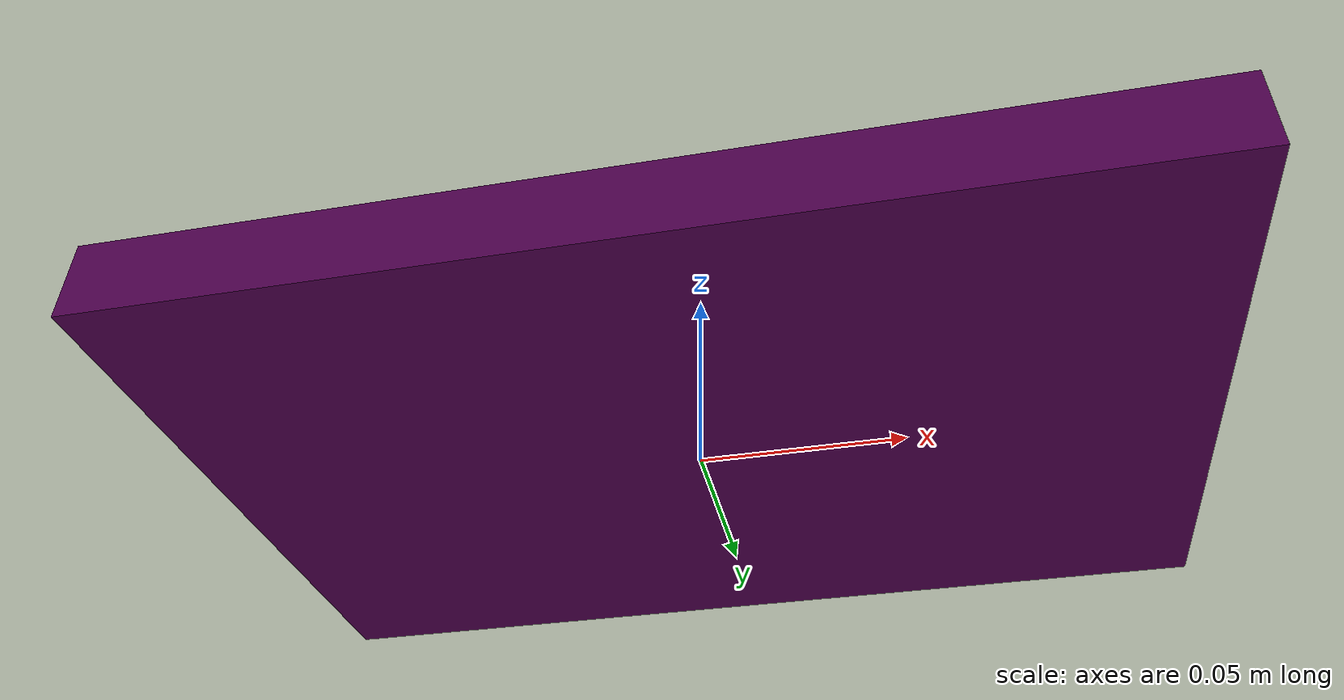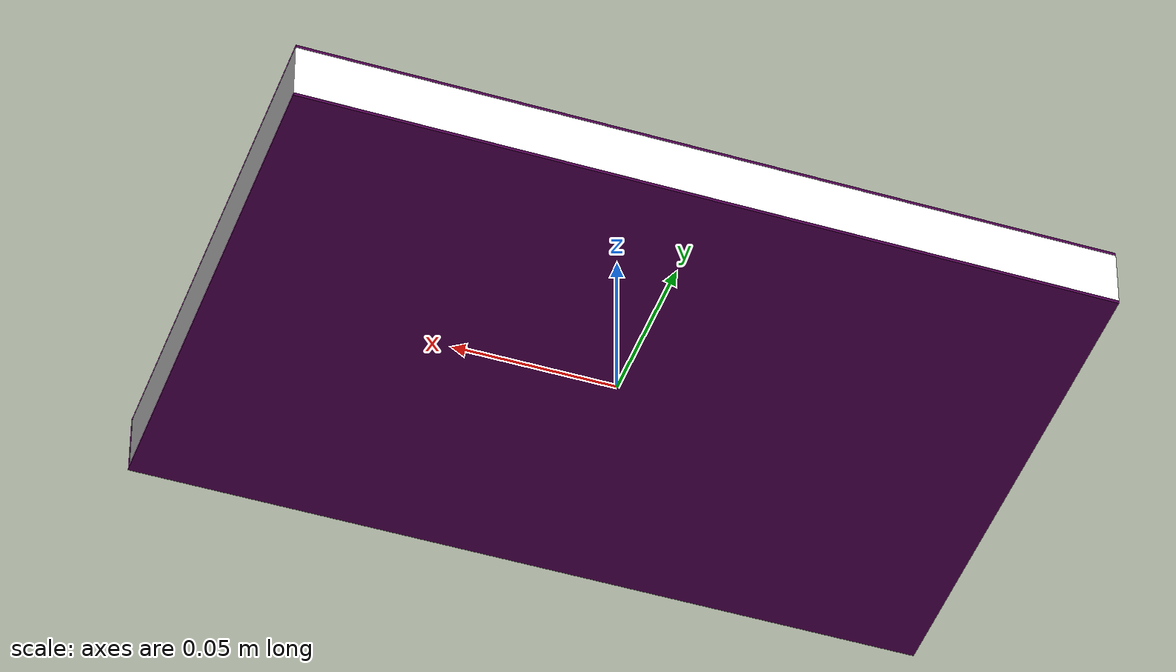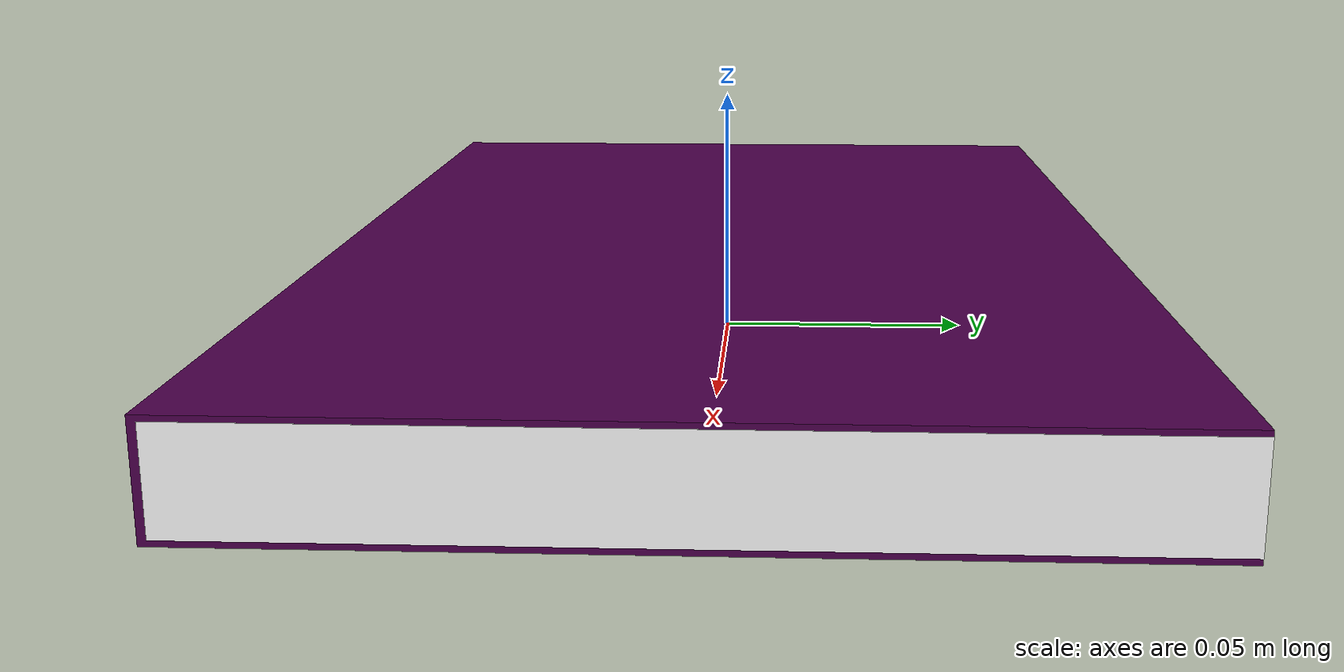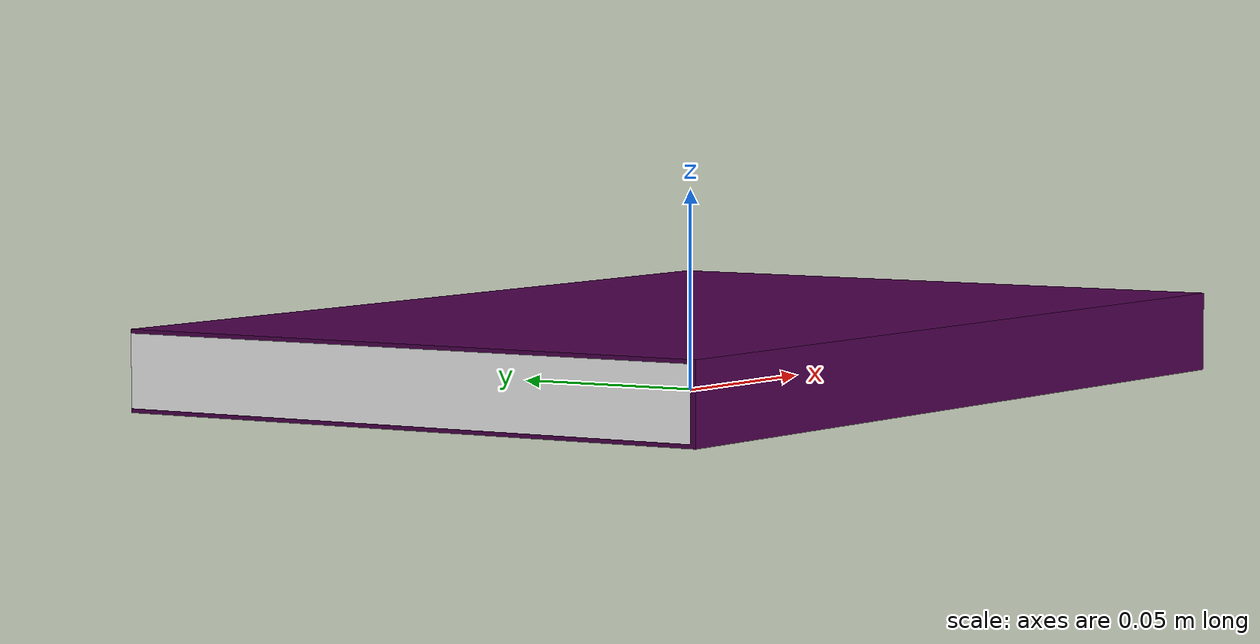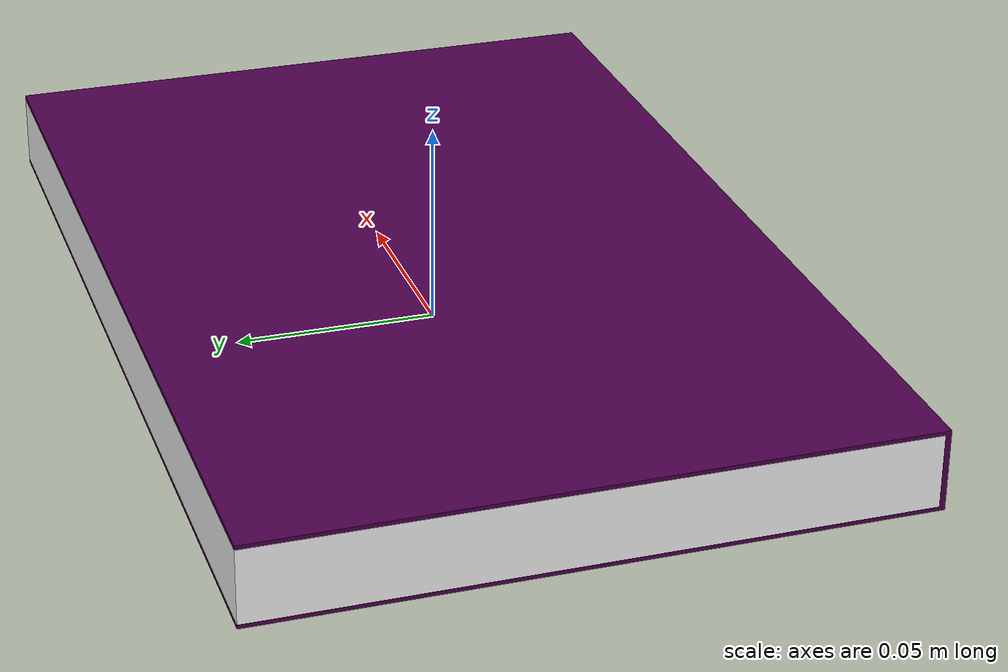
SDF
<?xml version='1.0'?>
<sdf version='1.6'>
  <model name='book_3'>
    <link name='cover'>
      <pose frame=''>0 -0.000108 0.010 0 -0 0</pose>
      <self_collide>0</self_collide>
      <kinematic>0</kinematic>
      <gravity>1</gravity>
      <visual name='visual'>
        <geometry>
          <box>
            <size>0.245 0.16 0.02</size>
          </box>
        </geometry>
        <material>
          <lighting>1</lighting>
          <ambient>0.3 1 0.5 1</ambient>
          <diffuse>0.3 0 0.3 1</diffuse>
          <specular>0.01 0.01 0.01 1</specular>
          <emissive>0 0 0 1</emissive>
          <shader type='vertex'>
            <normal_map>__default__</normal_map>
          </shader>
        </material>
	<material>
          <script>
            <uri>model://book_3/materials/scripts</uri>
            <uri>model://book_3/materials/textures</uri>
            <name>book_3</name>
          </script>
        </material>
        <cast_shadows>1</cast_shadows>
        <transparency>0</transparency>
      </visual>
      <collision name='collision'>
        <laser_retro>0</laser_retro>
        <max_contacts>10</max_contacts>
          <geometry>
          <box>
            <size>0.245 0.16 0.02</size>
          </box>
        </geometry>
        <surface>
          <friction>
            <ode>
              <mu>0.2</mu>
              <mu2>0.2</mu2>
            </ode>
          </friction>
        </surface>
        <contact>
          <ode>
            <max_vel>0</max_vel>
            <min_depth>0.001</min_depth>
          </ode>
        </contact>
       </collision>
    </link>
    <link name='page'>
      <pose frame=''>0 0.000608 0.010 0 -0 0</pose>
       <visual name='visual'>
        <pose frame=''>0 0 0 0 -0 0</pose>
        <geometry>
          <box>
            <size>0.24502 0.15862 0.018</size>
          </box>
        </geometry>
        <material>
          <lighting>1</lighting>
           <ambient>1 1 1 1</ambient>
          <diffuse>1 1 1 1</diffuse>
          <specular>0.01 0.01 0.01 1</specular>
          <emissive>0 0 0 1</emissive>
          <shader type='vertex'>
            <normal_map>__default__</normal_map>
          </shader>
        </material>
        <cast_shadows>1</cast_shadows>
        <transparency>0</transparency>
      </visual>
      <collision name='collision'>
        <laser_retro>0</laser_retro>
        <max_contacts>10</max_contacts>
        <pose frame=''>0 0 0 0 -0 0</pose>
        <geometry>
          <box>
            <size>0.245 0.16 0.018</size>
          </box>
        </geometry>
      </collision>
    </link>
    <joint type="fixed" name="book_center">
      <pose>0 0 0 0 0 0</pose>
      <child>page</child>
      <parent>cover</parent>
      <axis>
        <xyz>0 1 0</xyz>
      </axis>
    </joint>
    <allow_auto_disable>1</allow_auto_disable>
  </model>
</sdf>
